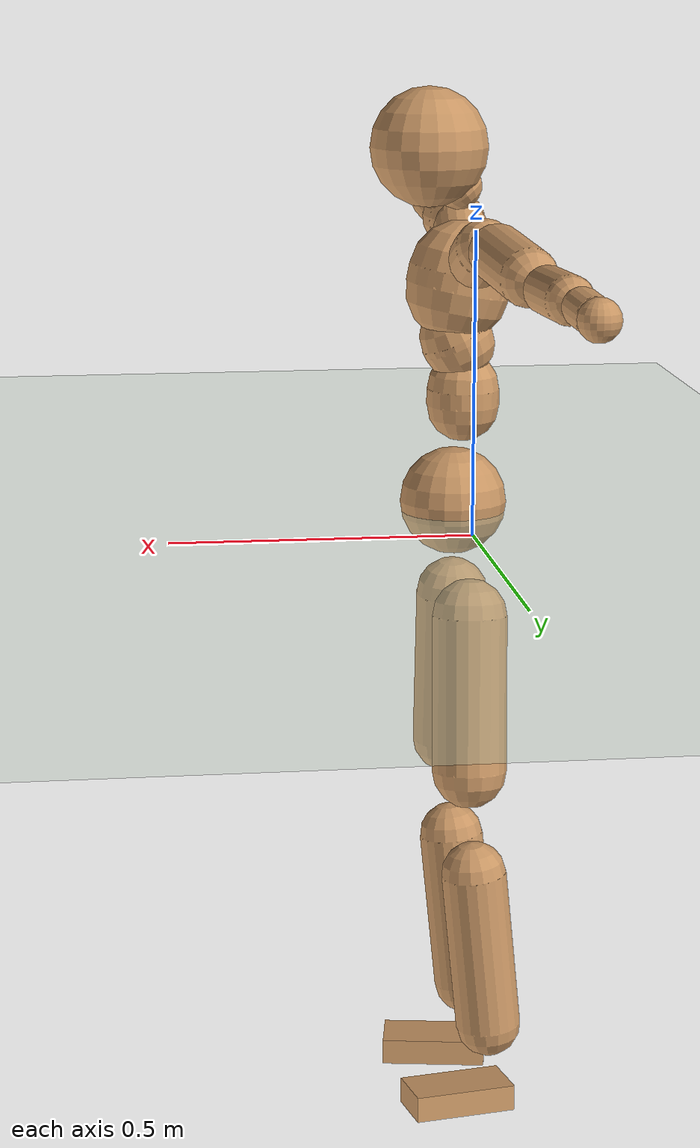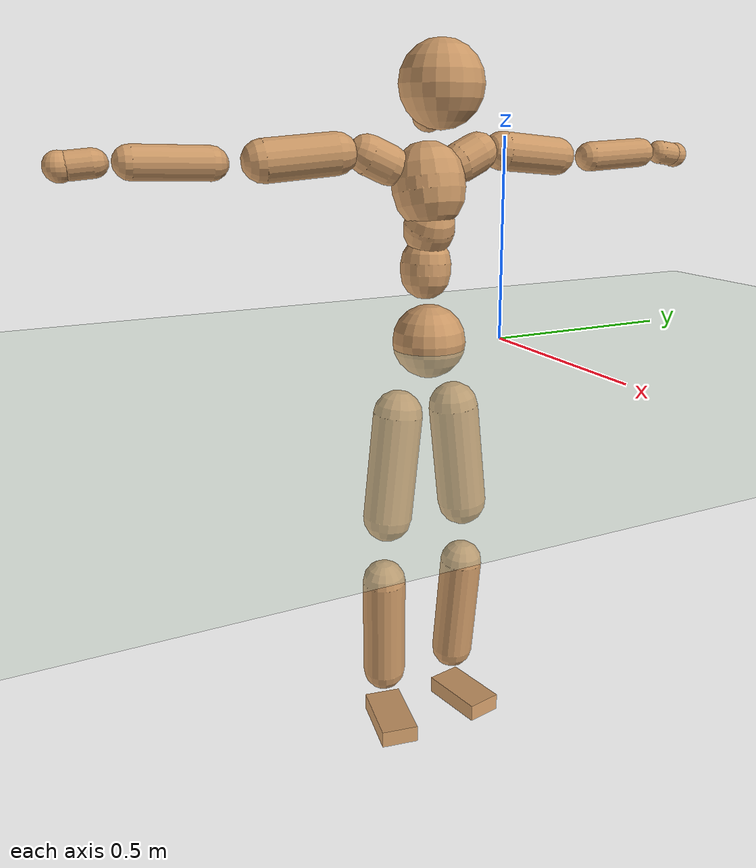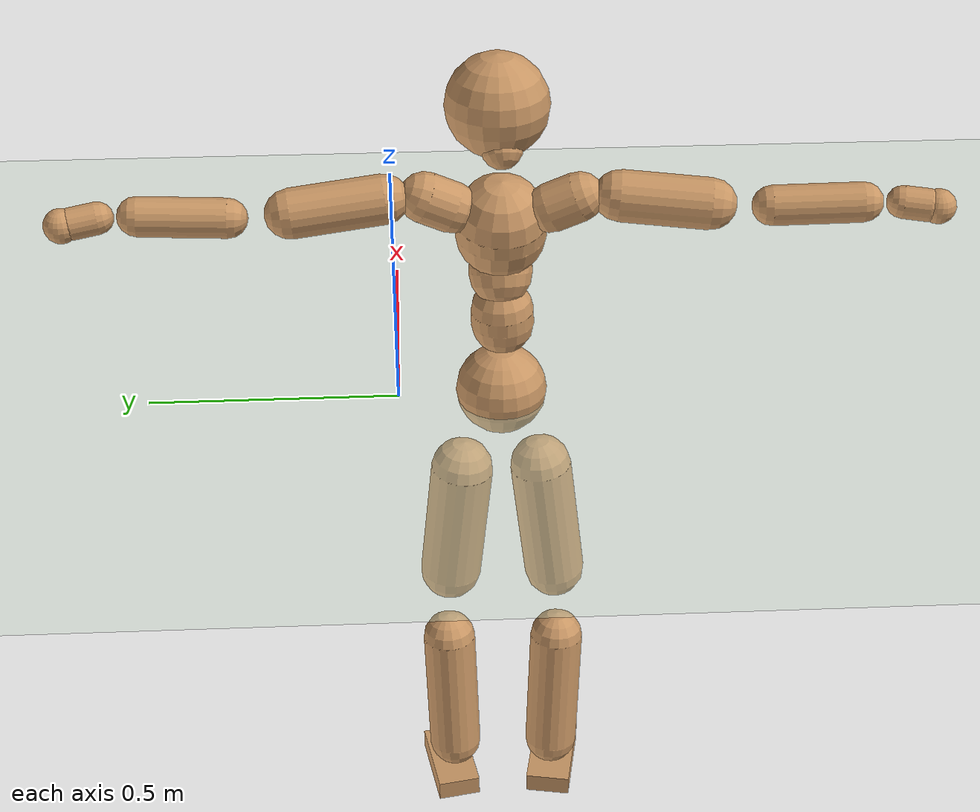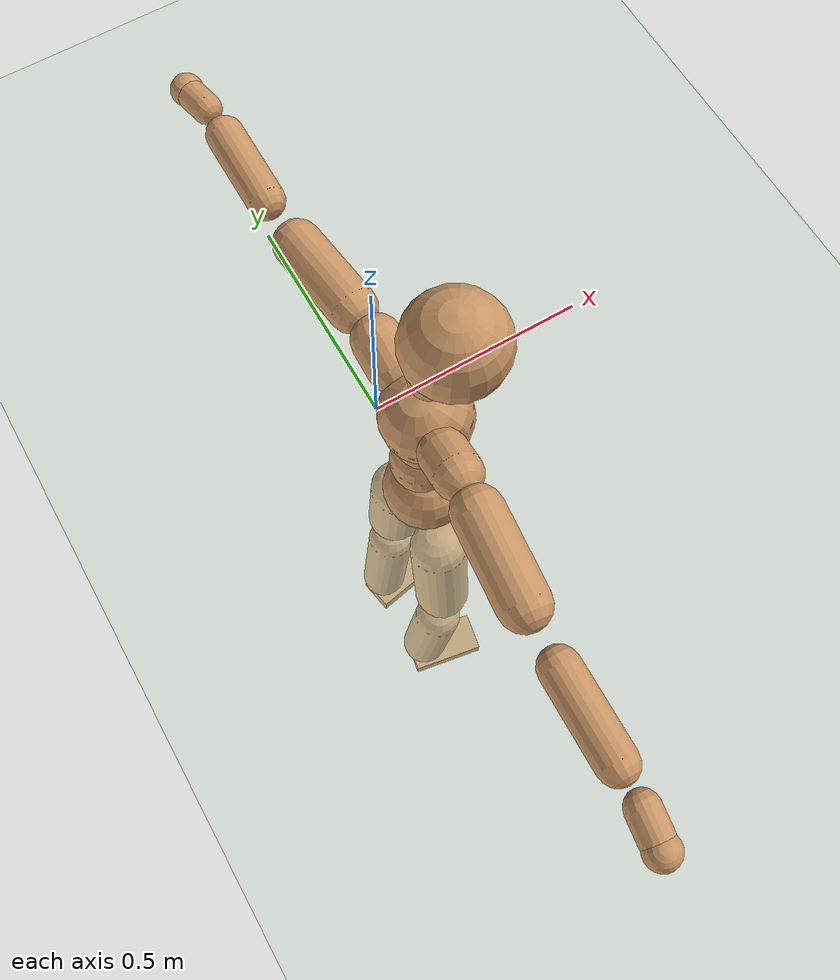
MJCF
<mujoco model="humanoid">
  <compiler coordinate="local" angle="radian"/>
  <default>
    <joint damping="0.0" armature="0.01" stiffness="0.0" limited="true"/>
    <geom conaffinity="1" condim="3" contype="7" margin="0.001" rgba="0.8 0.6 .4 1"/>
  </default>
  <asset>
    <texture type="skybox" builtin="gradient" rgb1=".4 .5 .6" rgb2="0 0 0" width="100" height="100"/>
    <texture builtin="flat" height="1278" mark="cross" markrgb="1 1 1" name="texgeom" random="0.01" rgb1="0.8 0.6 0.4" rgb2="0.8 0.6 0.4" type="cube" width="127"/>
    <texture builtin="checker" height="100" name="texplane" rgb1="0 0 0" rgb2="0.8 0.8 0.8" type="2d" width="100"/>
    <material name="MatPlane" reflectance="0.5" shininess="1" specular="1" texrepeat="60 60" texture="texplane"/>
    <material name="geom" texture="texgeom" texuniform="true"/>
  </asset>
  <worldbody>
    <light cutoff="100" diffuse="1 1 1" dir="-0 0 -1.3" directional="true" exponent="1" pos="0 0 1.3" specular=".1 .1 .1"/>
    <geom conaffinity="1" condim="3" name="floor" pos="0 0 0" rgba="0.8 0.9 0.8 1" size="100 100 .2" type="plane" material="MatPlane"/>
    <body name="Pelvis" pos="-0.0006 -0.207 0.0152">
      <freejoint name="Pelvis"/>
      <geom type="sphere" contype="1" conaffinity="1" density="500" size="0.0913" pos="0.0000 0.0000 0.0000" name="Pelvis"/>
      <body name="L_Hip" pos="-0.0181 0.0728 -0.0947">
        <joint name="L_Hip_x" type="hinge" pos="0 0 0" axis="1 0 0" stiffness="800" damping="80" armature="0.02" range="-180.0000 180.0000"/>
        <joint name="L_Hip_y" type="hinge" pos="0 0 0" axis="0 1 0" stiffness="800" damping="80" armature="0.02" range="-180.0000 180.0000"/>
        <joint name="L_Hip_z" type="hinge" pos="0 0 0" axis="0 0 1" stiffness="800" damping="80" armature="0.02" range="-180.0000 180.0000"/>
        <geom type="capsule" contype="1" conaffinity="1" density="500" fromto="0.0009 0.0092 -0.0894 0.0036 0.0367 -0.3575" size="0.0638" name="L_Hip"/>
        <body name="L_Knee" pos="0.0044 0.0459 -0.4469">
          <joint name="L_Knee_x" type="hinge" pos="0 0 0" axis="1 0 0" stiffness="800" damping="80" armature="0.02" range="-180.0000 180.0000"/>
          <joint name="L_Knee_y" type="hinge" pos="0 0 0" axis="0 1 0" stiffness="800" damping="80" armature="0.02" range="-180.0000 180.0000"/>
          <joint name="L_Knee_z" type="hinge" pos="0 0 0" axis="0 0 1" stiffness="800" damping="80" armature="0.02" range="-180.0000 180.0000"/>
          <geom type="capsule" contype="1" conaffinity="1" density="500" fromto="-0.0098 -0.0027 -0.0942 -0.0394 -0.0109 -0.3769" size="0.0562" name="L_Knee"/>
          <body name="L_Ankle" pos="-0.0492 -0.0136 -0.4712">
            <joint name="L_Ankle_x" type="hinge" pos="0 0 0" axis="1 0 0" stiffness="800" damping="80" armature="0.02" range="-180.0000 180.0000"/>
            <joint name="L_Ankle_y" type="hinge" pos="0 0 0" axis="0 1 0" stiffness="800" damping="80" armature="0.02" range="-180.0000 180.0000"/>
            <joint name="L_Ankle_z" type="hinge" pos="0 0 0" axis="0 0 1" stiffness="800" damping="80" armature="0.02" range="-180.0000 180.0000"/>
            <geom type="box" contype="1" conaffinity="1" density="500" pos="0.0643 0.0118 -0.0323" size="0.0896 0.0463 0.0227" quat="0.9959 0.0000 0.0000 0.0905" name="L_Ankle"/>
            <body name="L_Toe" pos="0.1286 0.0236 -0.0645">
              <joint name="L_Toe_x" type="hinge" pos="0 0 0" axis="1 0 0" stiffness="500" damping="50" armature="0.02" range="-180.0000 180.0000"/>
              <joint name="L_Toe_y" type="hinge" pos="0 0 0" axis="0 1 0" stiffness="500" damping="50" armature="0.02" range="-180.0000 180.0000"/>
              <joint name="L_Toe_z" type="hinge" pos="0 0 0" axis="0 0 1" stiffness="500" damping="50" armature="0.02" range="-180.0000 180.0000"/>
              <geom type="box" contype="1" conaffinity="1" density="500" pos="0.0000 0.0000 0.0326" size="0.0009 0.0023 0.0012" quat="0.9953 0.0000 0.0000 0.0965" name="L_Toe"/>
            </body>
          </body>
        </body>
      </body>
      <body name="R_Hip" pos="-0.0131 -0.0699 -0.0924">
        <joint name="R_Hip_x" type="hinge" pos="0 0 0" axis="1 0 0" stiffness="800" damping="80" armature="0.02" range="-180.0000 180.0000"/>
        <joint name="R_Hip_y" type="hinge" pos="0 0 0" axis="0 1 0" stiffness="800" damping="80" armature="0.02" range="-180.0000 180.0000"/>
        <joint name="R_Hip_z" type="hinge" pos="0 0 0" axis="0 0 1" stiffness="800" damping="80" armature="0.02" range="-180.0000 180.0000"/>
        <geom type="capsule" contype="1" conaffinity="1" density="500" fromto="0.0000 -0.0106 -0.0912 0.0000 -0.0424 -0.3649" size="0.0627" name="R_Hip"/>
        <body name="R_Knee" pos="0 -0.0531 -0.4562">
          <joint name="R_Knee_x" type="hinge" pos="0 0 0" axis="1 0 0" stiffness="800" damping="80" armature="0.02" range="-180.0000 180.0000"/>
          <joint name="R_Knee_y" type="hinge" pos="0 0 0" axis="0 1 0" stiffness="800" damping="80" armature="0.02" range="-180.0000 180.0000"/>
          <joint name="R_Knee_z" type="hinge" pos="0 0 0" axis="0 0 1" stiffness="800" damping="80" armature="0.02" range="-180.0000 180.0000"/>
          <geom type="capsule" contype="1" conaffinity="1" density="500" fromto="-0.0092 0.0036 -0.0940 -0.0368 0.0142 -0.3761" size="0.0565" name="R_Knee"/>
          <body name="R_Ankle" pos="-0.046 0.0178 -0.4702">
            <joint name="R_Ankle_x" type="hinge" pos="0 0 0" axis="1 0 0" stiffness="800" damping="80" armature="0.02" range="-180.0000 180.0000"/>
            <joint name="R_Ankle_y" type="hinge" pos="0 0 0" axis="0 1 0" stiffness="800" damping="80" armature="0.02" range="-180.0000 180.0000"/>
            <joint name="R_Ankle_z" type="hinge" pos="0 0 0" axis="0 0 1" stiffness="800" damping="80" armature="0.02" range="-180.0000 180.0000"/>
            <geom type="box" contype="1" conaffinity="1" density="500" pos="0.0661 -0.0120 -0.0277" size="0.0916 0.0483 0.0223" quat="0.9960 0.0000 0.0000 -0.0898" name="R_Ankle"/>
            <body name="R_Toe" pos="0.1322 -0.024 -0.0554">
              <joint name="R_Toe_x" type="hinge" pos="0 0 0" axis="1 0 0" stiffness="500" damping="50" armature="0.02" range="-180.0000 180.0000"/>
              <joint name="R_Toe_y" type="hinge" pos="0 0 0" axis="0 1 0" stiffness="500" damping="50" armature="0.02" range="-180.0000 180.0000"/>
              <joint name="R_Toe_z" type="hinge" pos="0 0 0" axis="0 0 1" stiffness="500" damping="50" armature="0.02" range="-180.0000 180.0000"/>
              <geom type="box" contype="1" conaffinity="1" density="500" pos="0.0000 0.0000 0.0307" size="0.0008 0.0023 0.0013" quat="0.9967 0.0000 0.0000 -0.0813" name="R_Toe"/>
            </body>
          </body>
        </body>
      </body>
      <body name="Torso" pos="-0.0151 -0.0036 0.108">
        <joint name="Torso_x" type="hinge" pos="0 0 0" axis="1 0 0" stiffness="1000" damping="100" armature="0.02" range="-180.0000 180.0000"/>
        <joint name="Torso_y" type="hinge" pos="0 0 0" axis="0 1 0" stiffness="1000" damping="100" armature="0.02" range="-180.0000 180.0000"/>
        <joint name="Torso_z" type="hinge" pos="0 0 0" axis="0 0 1" stiffness="1000" damping="100" armature="0.02" range="-180.0000 180.0000"/>
        <geom type="capsule" contype="1" conaffinity="1" density="500" fromto="-0.0007 0.0028 0.0851 -0.0005 0.0019 0.0567" size="0.0618" name="Torso"/>
        <body name="Spine" pos="-0.0012 0.0047 0.1418">
          <joint name="Spine_x" type="hinge" pos="0 0 0" axis="1 0 0" stiffness="1000" damping="100" armature="0.02" range="-180.0000 180.0000"/>
          <joint name="Spine_y" type="hinge" pos="0 0 0" axis="0 1 0" stiffness="1000" damping="100" armature="0.02" range="-180.0000 180.0000"/>
          <joint name="Spine_z" type="hinge" pos="0 0 0" axis="0 0 1" stiffness="1000" damping="100" armature="0.02" range="-180.0000 180.0000"/>
          <geom type="capsule" contype="1" conaffinity="1" density="500" fromto="0.0144 0.0006 0.0310 0.0096 0.0004 0.0207" size="0.0622" name="Spine"/>
          <body name="Chest" pos="0.0239 0.001 0.0517">
            <joint name="Chest_x" type="hinge" pos="0 0 0" axis="1 0 0" stiffness="1000" damping="100" armature="0.02" range="-180.0000 180.0000"/>
            <joint name="Chest_y" type="hinge" pos="0 0 0" axis="0 1 0" stiffness="1000" damping="100" armature="0.02" range="-180.0000 180.0000"/>
            <joint name="Chest_z" type="hinge" pos="0 0 0" axis="0 0 1" stiffness="1000" damping="100" armature="0.02" range="-180.0000 180.0000"/>
            <geom type="capsule" contype="1" conaffinity="1" density="500" fromto="-0.0177 -0.0013 0.0889 -0.0118 -0.0009 0.0593" size="0.0881" name="Chest"/>
            <body name="Neck" pos="-0.0248 -0.0046 0.2171">
              <joint name="Neck_x" type="hinge" pos="0 0 0" axis="1 0 0" stiffness="500" damping="50" armature="0.02" range="-180.0000 180.0000"/>
              <joint name="Neck_y" type="hinge" pos="0 0 0" axis="0 1 0" stiffness="500" damping="50" armature="0.02" range="-180.0000 180.0000"/>
              <joint name="Neck_z" type="hinge" pos="0 0 0" axis="0 0 1" stiffness="500" damping="50" armature="0.02" range="-180.0000 180.0000"/>
              <geom type="capsule" contype="1" conaffinity="1" density="500" fromto="0.0126 0.0015 0.0163 0.0505 0.0059 0.0650" size="0.04" name="Neck"/>
              <body name="Head" pos="0.0631 0.0074 0.0813">
                <joint name="Head_x" type="hinge" pos="0 0 0" axis="1 0 0" stiffness="500" damping="50" armature="0.02" range="-180.0000 180.0000"/>
                <joint name="Head_y" type="hinge" pos="0 0 0" axis="0 1 0" stiffness="500" damping="50" armature="0.02" range="-180.0000 180.0000"/>
                <joint name="Head_z" type="hinge" pos="0 0 0" axis="0 0 1" stiffness="500" damping="50" armature="0.02" range="-180.0000 180.0000"/>
                <geom type="sphere" contype="1" conaffinity="1" density="500" size="0.0998" pos="0.0000 0.0000 0.0000" name="Head"/>
              </body>
            </body>
            <body name="L_Thorax" pos="-0.0289 0.0742 0.1149">
              <joint name="L_Thorax_x" type="hinge" pos="0 0 0" axis="1 0 0" stiffness="500" damping="50" armature="0.02" range="-180.0000 180.0000"/>
              <joint name="L_Thorax_y" type="hinge" pos="0 0 0" axis="0 1 0" stiffness="500" damping="50" armature="0.02" range="-180.0000 180.0000"/>
              <joint name="L_Thorax_z" type="hinge" pos="0 0 0" axis="0 0 1" stiffness="500" damping="50" armature="0.02" range="-180.0000 180.0000"/>
              <geom type="capsule" contype="1" conaffinity="1" density="500" fromto="-0.0010 0.0169 0.0079 -0.0040 0.0676 0.0315" size="0.049" name="L_Thorax"/>
              <body name="L_Shoulder" pos="-0.005 0.0845 0.0393">
                <joint name="L_Shoulder_x" type="hinge" pos="0 0 0" axis="1 0 0" stiffness="500" damping="50" armature="0.02" range="-720.0000 720.0000"/>
                <joint name="L_Shoulder_y" type="hinge" pos="0 0 0" axis="0 1 0" stiffness="500" damping="50" armature="0.02" range="-720.0000 720.0000"/>
                <joint name="L_Shoulder_z" type="hinge" pos="0 0 0" axis="0 0 1" stiffness="500" damping="50" armature="0.02" range="-720.0000 720.0000"/>
                <geom type="capsule" contype="1" conaffinity="1" density="500" fromto="-0.0061 0.0585 -0.0053 -0.0244 0.2341 -0.0213" size="0.0475" name="L_Shoulder"/>
                <body name="L_Elbow" pos="-0.0306 0.2926 -0.0266">
                  <joint name="L_Elbow_x" type="hinge" pos="0 0 0" axis="1 0 0" stiffness="500" damping="50" armature="0.02" range="-720.0000 720.0000"/>
                  <joint name="L_Elbow_y" type="hinge" pos="0 0 0" axis="0 1 0" stiffness="500" damping="50" armature="0.02" range="-720.0000 720.0000"/>
                  <joint name="L_Elbow_z" type="hinge" pos="0 0 0" axis="0 0 1" stiffness="500" damping="50" armature="0.02" range="-720.0000 720.0000"/>
                  <geom type="capsule" contype="1" conaffinity="1" density="500" fromto="-0.0002 0.0553 0.0026 -0.0010 0.2211 0.0106" size="0.0378" name="L_Elbow"/>
                  <body name="L_Wrist" pos="-0.0012 0.2764 0.0132">
                    <joint name="L_Wrist_x" type="hinge" pos="0 0 0" axis="1 0 0" stiffness="300" damping="30" armature="0.02" range="-180.0000 180.0000"/>
                    <joint name="L_Wrist_y" type="hinge" pos="0 0 0" axis="0 1 0" stiffness="300" damping="30" armature="0.02" range="-180.0000 180.0000"/>
                    <joint name="L_Wrist_z" type="hinge" pos="0 0 0" axis="0 0 1" stiffness="300" damping="30" armature="0.02" range="-180.0000 180.0000"/>
                    <geom type="capsule" contype="1" conaffinity="1" density="500" fromto="-0.0028 0.0165 -0.0021 -0.0112 0.0660 -0.0085" size="0.0304" name="L_Wrist"/>
                    <body name="L_Hand" pos="-0.014 0.0825 -0.0106">
                      <joint name="L_Hand_x" type="hinge" pos="0 0 0" axis="1 0 0" stiffness="300" damping="30" armature="0.02" range="-180.0000 180.0000"/>
                      <joint name="L_Hand_y" type="hinge" pos="0 0 0" axis="0 1 0" stiffness="300" damping="30" armature="0.02" range="-180.0000 180.0000"/>
                      <joint name="L_Hand_z" type="hinge" pos="0 0 0" axis="0 0 1" stiffness="300" damping="30" armature="0.02" range="-180.0000 180.0000"/>
                      <geom type="sphere" contype="1" conaffinity="1" density="500" size="0.0330" pos="0.0000 0.0000 0.0000" name="L_Hand"/>
                    </body>
                  </body>
                </body>
              </body>
            </body>
            <body name="R_Thorax" pos="-0.0349 -0.0762 0.1124">
              <joint name="R_Thorax_x" type="hinge" pos="0 0 0" axis="1 0 0" stiffness="500" damping="50" armature="0.02" range="-180.0000 180.0000"/>
              <joint name="R_Thorax_y" type="hinge" pos="0 0 0" axis="0 1 0" stiffness="500" damping="50" armature="0.02" range="-180.0000 180.0000"/>
              <joint name="R_Thorax_z" type="hinge" pos="0 0 0" axis="0 0 1" stiffness="500" damping="50" armature="0.02" range="-180.0000 180.0000"/>
              <geom type="capsule" contype="1" conaffinity="1" density="500" fromto="-0.0014 -0.0176 0.0081 -0.0057 -0.0705 0.0325" size="0.0473" name="R_Thorax"/>
              <body name="R_Shoulder" pos="-0.0071 -0.0881 0.0406">
                <joint name="R_Shoulder_x" type="hinge" pos="0 0 0" axis="1 0 0" stiffness="500" damping="50" armature="0.02" range="-720.0000 720.0000"/>
                <joint name="R_Shoulder_y" type="hinge" pos="0 0 0" axis="0 1 0" stiffness="500" damping="50" armature="0.02" range="-720.0000 720.0000"/>
                <joint name="R_Shoulder_z" type="hinge" pos="0 0 0" axis="0 0 1" stiffness="500" damping="50" armature="0.02" range="-720.0000 720.0000"/>
                <geom type="capsule" contype="1" conaffinity="1" density="500" fromto="-0.0049 -0.0569 -0.0046 -0.0194 -0.2275 -0.0186" size="0.0491" name="R_Shoulder"/>
                <body name="R_Elbow" pos="-0.0243 -0.2843 -0.0232">
                  <joint name="R_Elbow_x" type="hinge" pos="0 0 0" axis="1 0 0" stiffness="500" damping="50" armature="0.02" range="-720.0000 720.0000"/>
                  <joint name="R_Elbow_y" type="hinge" pos="0 0 0" axis="0 1 0" stiffness="500" damping="50" armature="0.02" range="-720.0000 720.0000"/>
                  <joint name="R_Elbow_z" type="hinge" pos="0 0 0" axis="0 0 1" stiffness="500" damping="50" armature="0.02" range="-720.0000 720.0000"/>
                  <geom type="capsule" contype="1" conaffinity="1" density="500" fromto="-0.0014 -0.0569 0.0016 -0.0057 -0.2277 0.0063" size="0.0381" name="R_Elbow"/>
                  <body name="R_Wrist" pos="-0.0072 -0.2846 0.0079">
                    <joint name="R_Wrist_x" type="hinge" pos="0 0 0" axis="1 0 0" stiffness="300" damping="30" armature="0.02" range="-180.0000 180.0000"/>
                    <joint name="R_Wrist_y" type="hinge" pos="0 0 0" axis="0 1 0" stiffness="300" damping="30" armature="0.02" range="-180.0000 180.0000"/>
                    <joint name="R_Wrist_z" type="hinge" pos="0 0 0" axis="0 0 1" stiffness="300" damping="30" armature="0.02" range="-180.0000 180.0000"/>
                    <geom type="capsule" contype="1" conaffinity="1" density="500" fromto="-0.0021 -0.0167 -0.0015 -0.0086 -0.0666 -0.0062" size="0.0311" name="R_Wrist"/>
                    <body name="R_Hand" pos="-0.0107 -0.0833 -0.0077">
                      <joint name="R_Hand_x" type="hinge" pos="0 0 0" axis="1 0 0" stiffness="300" damping="30" armature="0.02" range="-180.0000 180.0000"/>
                      <joint name="R_Hand_y" type="hinge" pos="0 0 0" axis="0 1 0" stiffness="300" damping="30" armature="0.02" range="-180.0000 180.0000"/>
                      <joint name="R_Hand_z" type="hinge" pos="0 0 0" axis="0 0 1" stiffness="300" damping="30" armature="0.02" range="-180.0000 180.0000"/>
                      <geom type="sphere" contype="1" conaffinity="1" density="500" size="0.0332" pos="0.0000 0.0000 0.0000" name="R_Hand"/>
                    </body>
                  </body>
                </body>
              </body>
            </body>
          </body>
        </body>
      </body>
    </body>
  </worldbody>
  <actuator>
    <motor name="L_Hip_x" joint="L_Hip_x" gear="500"/>
    <motor name="L_Hip_y" joint="L_Hip_y" gear="500"/>
    <motor name="L_Hip_z" joint="L_Hip_z" gear="500"/>
    <motor name="L_Knee_x" joint="L_Knee_x" gear="500"/>
    <motor name="L_Knee_y" joint="L_Knee_y" gear="500"/>
    <motor name="L_Knee_z" joint="L_Knee_z" gear="500"/>
    <motor name="L_Ankle_x" joint="L_Ankle_x" gear="500"/>
    <motor name="L_Ankle_y" joint="L_Ankle_y" gear="500"/>
    <motor name="L_Ankle_z" joint="L_Ankle_z" gear="500"/>
    <motor name="L_Toe_x" joint="L_Toe_x" gear="500"/>
    <motor name="L_Toe_y" joint="L_Toe_y" gear="500"/>
    <motor name="L_Toe_z" joint="L_Toe_z" gear="500"/>
    <motor name="R_Hip_x" joint="R_Hip_x" gear="500"/>
    <motor name="R_Hip_y" joint="R_Hip_y" gear="500"/>
    <motor name="R_Hip_z" joint="R_Hip_z" gear="500"/>
    <motor name="R_Knee_x" joint="R_Knee_x" gear="500"/>
    <motor name="R_Knee_y" joint="R_Knee_y" gear="500"/>
    <motor name="R_Knee_z" joint="R_Knee_z" gear="500"/>
    <motor name="R_Ankle_x" joint="R_Ankle_x" gear="500"/>
    <motor name="R_Ankle_y" joint="R_Ankle_y" gear="500"/>
    <motor name="R_Ankle_z" joint="R_Ankle_z" gear="500"/>
    <motor name="R_Toe_x" joint="R_Toe_x" gear="500"/>
    <motor name="R_Toe_y" joint="R_Toe_y" gear="500"/>
    <motor name="R_Toe_z" joint="R_Toe_z" gear="500"/>
    <motor name="Torso_x" joint="Torso_x" gear="500"/>
    <motor name="Torso_y" joint="Torso_y" gear="500"/>
    <motor name="Torso_z" joint="Torso_z" gear="500"/>
    <motor name="Spine_x" joint="Spine_x" gear="500"/>
    <motor name="Spine_y" joint="Spine_y" gear="500"/>
    <motor name="Spine_z" joint="Spine_z" gear="500"/>
    <motor name="Chest_x" joint="Chest_x" gear="500"/>
    <motor name="Chest_y" joint="Chest_y" gear="500"/>
    <motor name="Chest_z" joint="Chest_z" gear="500"/>
    <motor name="Neck_x" joint="Neck_x" gear="500"/>
    <motor name="Neck_y" joint="Neck_y" gear="500"/>
    <motor name="Neck_z" joint="Neck_z" gear="500"/>
    <motor name="Head_x" joint="Head_x" gear="500"/>
    <motor name="Head_y" joint="Head_y" gear="500"/>
    <motor name="Head_z" joint="Head_z" gear="500"/>
    <motor name="L_Thorax_x" joint="L_Thorax_x" gear="500"/>
    <motor name="L_Thorax_y" joint="L_Thorax_y" gear="500"/>
    <motor name="L_Thorax_z" joint="L_Thorax_z" gear="500"/>
    <motor name="L_Shoulder_x" joint="L_Shoulder_x" gear="500"/>
    <motor name="L_Shoulder_y" joint="L_Shoulder_y" gear="500"/>
    <motor name="L_Shoulder_z" joint="L_Shoulder_z" gear="500"/>
    <motor name="L_Elbow_x" joint="L_Elbow_x" gear="500"/>
    <motor name="L_Elbow_y" joint="L_Elbow_y" gear="500"/>
    <motor name="L_Elbow_z" joint="L_Elbow_z" gear="500"/>
    <motor name="L_Wrist_x" joint="L_Wrist_x" gear="500"/>
    <motor name="L_Wrist_y" joint="L_Wrist_y" gear="500"/>
    <motor name="L_Wrist_z" joint="L_Wrist_z" gear="500"/>
    <motor name="L_Hand_x" joint="L_Hand_x" gear="500"/>
    <motor name="L_Hand_y" joint="L_Hand_y" gear="500"/>
    <motor name="L_Hand_z" joint="L_Hand_z" gear="500"/>
    <motor name="R_Thorax_x" joint="R_Thorax_x" gear="500"/>
    <motor name="R_Thorax_y" joint="R_Thorax_y" gear="500"/>
    <motor name="R_Thorax_z" joint="R_Thorax_z" gear="500"/>
    <motor name="R_Shoulder_x" joint="R_Shoulder_x" gear="500"/>
    <motor name="R_Shoulder_y" joint="R_Shoulder_y" gear="500"/>
    <motor name="R_Shoulder_z" joint="R_Shoulder_z" gear="500"/>
    <motor name="R_Elbow_x" joint="R_Elbow_x" gear="500"/>
    <motor name="R_Elbow_y" joint="R_Elbow_y" gear="500"/>
    <motor name="R_Elbow_z" joint="R_Elbow_z" gear="500"/>
    <motor name="R_Wrist_x" joint="R_Wrist_x" gear="500"/>
    <motor name="R_Wrist_y" joint="R_Wrist_y" gear="500"/>
    <motor name="R_Wrist_z" joint="R_Wrist_z" gear="500"/>
    <motor name="R_Hand_x" joint="R_Hand_x" gear="500"/>
    <motor name="R_Hand_y" joint="R_Hand_y" gear="500"/>
    <motor name="R_Hand_z" joint="R_Hand_z" gear="500"/>
  </actuator>
  <contact>
    <exclude body1="Torso" body2="Chest"/>
    <exclude body1="Head" body2="Chest"/>
    <exclude body1="R_Knee" body2="R_Toe"/>
    <exclude body1="R_Knee" body2="L_Ankle"/>
    <exclude body1="R_Knee" body2="L_Toe"/>
    <exclude body1="L_Knee" body2="L_Toe"/>
    <exclude body1="L_Knee" body2="R_Ankle"/>
    <exclude body1="L_Knee" body2="R_Toe"/>
    <exclude body1="L_Shoulder" body2="Chest"/>
    <exclude body1="R_Shoulder" body2="Chest"/>
  </contact>
  <sensor/>
  <size njmax="700" nconmax="700"/>
</mujoco>
